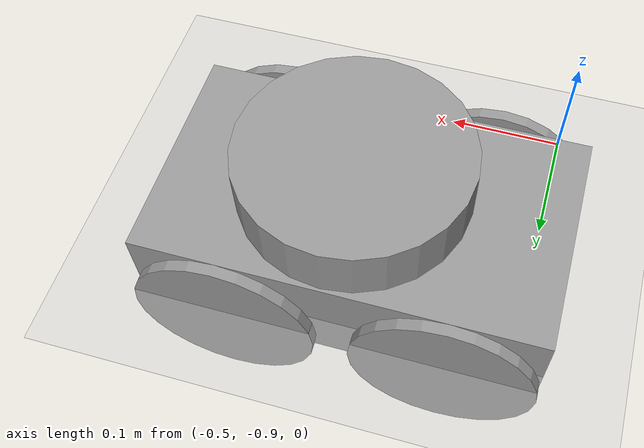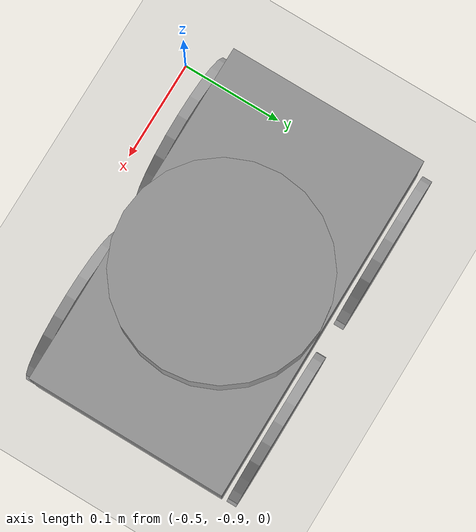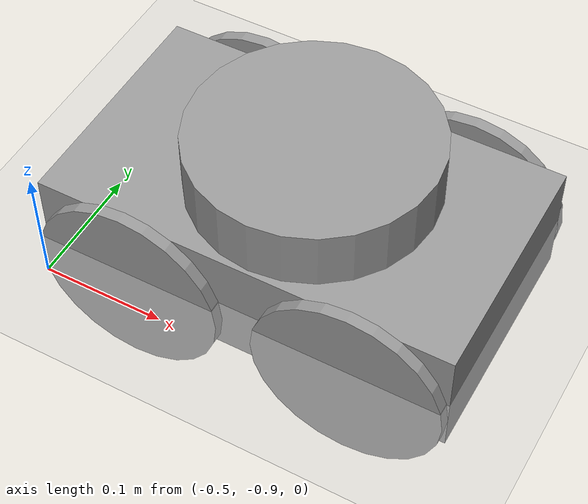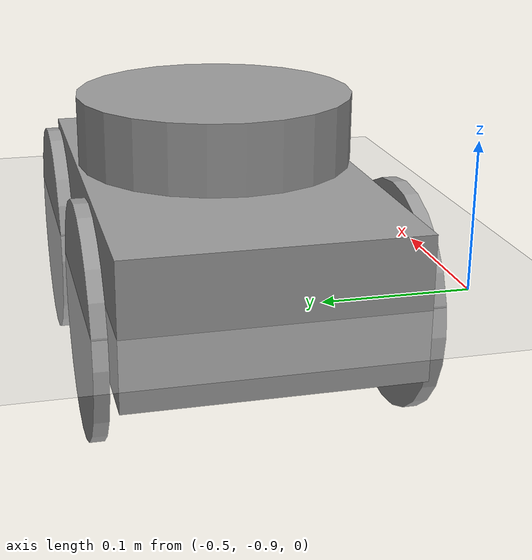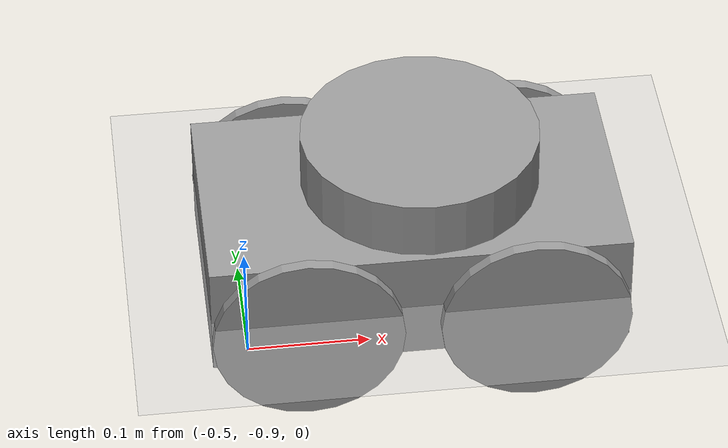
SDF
<sdf version="1.6">
 <world name="default">
  <model name="ground_plane">
   <static>1</static>
   <link name="link">
    <collision name="collision">
     <geometry><plane><normal>0 0 1</normal><size>100 100</size></plane></geometry>
     <surface><friction><ode><mu>100</mu><mu2>50</mu2></ode></friction></surface>
    </collision>
    <visual name="visual">
     <cast_shadows>0</cast_shadows>
     <geometry><plane><normal>0 0 1</normal><size>100 100</size></plane></geometry>
     <material>
      <script><uri>file://media/materials/scripts/gazebo.material</uri><name>Gazebo/Grey</name></script>
     </material>
    </visual>
   </link>
  </model>
  <model name="Recon01_0">
   <link name="link_0">
    <pose>-0.001667 -0.001667 0 0 -0 0</pose>
    <inertial>
     <mass>1</mass>
     <inertia>
      <ixx>0.166667</ixx>
      <ixy>0</ixy>
      <ixz>0</ixz>
      <iyy>0.166667</iyy>
      <iyz>0</iyz>
      <izz>0.166667</izz>
     </inertia>
    </inertial>
    <visual name="visual">
     <geometry><box><size>0.35 0.2 0.1</size></box></geometry>
     <material>
      <lighting>1</lighting>
      <script><uri>file://media/materials/scripts/gazebo.material</uri><name>Gazebo/Grey</name></script>
      <ambient>0.3 0.3 0.3 1</ambient>
      <diffuse>0.7 0.7 0.7 1</diffuse>
      <specular>0.01 0.01 0.01 1</specular>
      <emissive>0 0 0 1</emissive>
      <shader type="vertex"><normal_map>__default__</normal_map></shader>
     </material>
    </visual>
    <collision name="collision">
     <geometry><box><size>0.35 0.2 0.1</size></box></geometry>
     <surface>
      <friction>
       <ode><mu>1</mu><mu2>1</mu2><fdir1>0 0 0</fdir1><slip1>0</slip1><slip2>0</slip2></ode>
       <torsional>
        <coefficient>1</coefficient>
        <patch_radius>0</patch_radius>
        <surface_radius>0</surface_radius>
        <use_patch_radius>1</use_patch_radius>
        <ode><slip>0</slip></ode>
       </torsional>
      </friction>
      <bounce><restitution_coefficient>0</restitution_coefficient><threshold>1e+06</threshold></bounce>
      <contact>
       <collide_without_contact>0</collide_without_contact>
       <collide_without_contact_bitmask>1</collide_without_contact_bitmask>
       <collide_bitmask>1</collide_bitmask>
       <ode>
        <soft_cfm>0</soft_cfm>
        <soft_erp>0.2</soft_erp>
        <kp>1e+13</kp>
        <kd>1</kd>
        <max_vel>0.01</max_vel>
        <min_depth>0</min_depth>
       </ode>
       <bullet>
        <split_impulse>1</split_impulse>
        <split_impulse_penetration_threshold>-0.01</split_impulse_penetration_threshold>
        <soft_cfm>0</soft_cfm>
        <soft_erp>0.2</soft_erp>
        <kp>1e+13</kp>
        <kd>1</kd>
       </bullet>
      </contact>
     </surface>
    </collision>
   </link>
   <link name="link_1">
    <pose>-0.096667 0.108333 -0.02 1.5708 -0 0</pose>
    <inertial>
     <mass>1</mass>
     <inertia><ixx>0.145833</ixx><ixy>0</ixy><ixz>0</ixz><iyy>0.145833</iyy><iyz>0</iyz><izz>0.125</izz></inertia>
    </inertial>
    <visual name="visual">
     <geometry><cylinder><radius>0.08</radius><length>0.01</length></cylinder></geometry>
     <material>
      <lighting>1</lighting>
      <script><uri>file://media/materials/scripts/gazebo.material</uri><name>Gazebo/Grey</name></script>
      <ambient>0.3 0.3 0.3 1</ambient>
      <diffuse>0.7 0.7 0.7 1</diffuse>
      <specular>0.01 0.01 0.01 1</specular>
      <emissive>0 0 0 1</emissive>
      <shader type="vertex"><normal_map>__default__</normal_map></shader>
     </material>
    </visual>
    <collision name="collision">
     <geometry><cylinder><radius>0.08</radius><length>0.01</length></cylinder></geometry>
     <surface>
      <friction>
       <ode><mu>1</mu><mu2>1</mu2><fdir1>0 0 0</fdir1><slip1>0</slip1><slip2>0</slip2></ode>
       <torsional>
        <coefficient>1</coefficient>
        <patch_radius>0</patch_radius>
        <surface_radius>0</surface_radius>
        <use_patch_radius>1</use_patch_radius>
        <ode><slip>0</slip></ode>
       </torsional>
      </friction>
      <bounce><restitution_coefficient>0</restitution_coefficient><threshold>1e+06</threshold></bounce>
      <contact>
       <collide_without_contact>0</collide_without_contact>
       <collide_without_contact_bitmask>1</collide_without_contact_bitmask>
       <collide_bitmask>1</collide_bitmask>
       <ode>
        <soft_cfm>0</soft_cfm>
        <soft_erp>0.2</soft_erp>
        <kp>1e+13</kp>
        <kd>1</kd>
        <max_vel>0.01</max_vel>
        <min_depth>0</min_depth>
       </ode>
       <bullet>
        <split_impulse>1</split_impulse>
        <split_impulse_penetration_threshold>-0.01</split_impulse_penetration_threshold>
        <soft_cfm>0</soft_cfm>
        <soft_erp>0.2</soft_erp>
        <kp>1e+13</kp>
        <kd>1</kd>
       </bullet>
      </contact>
     </surface>
    </collision>
   </link>
   <link name="link_1_clone">
    <pose>0.093333 0.108333 -0.02 1.5708 -0 0</pose>
    <inertial>
     <mass>1</mass>
     <inertia><ixx>0.145833</ixx><ixy>0</ixy><ixz>0</ixz><iyy>0.145833</iyy><iyz>0</iyz><izz>0.125</izz></inertia>
    </inertial>
    <visual name="visual">
     <geometry><cylinder><radius>0.08</radius><length>0.01</length></cylinder></geometry>
     <material>
      <lighting>1</lighting>
      <script><uri>file://media/materials/scripts/gazebo.material</uri><name>Gazebo/Grey</name></script>
      <ambient>0.3 0.3 0.3 1</ambient>
      <diffuse>0.7 0.7 0.7 1</diffuse>
      <specular>0.01 0.01 0.01 1</specular>
      <emissive>0 0 0 1</emissive>
      <shader type="vertex"><normal_map>__default__</normal_map></shader>
     </material>
    </visual>
    <collision name="collision">
     <geometry><cylinder><radius>0.08</radius><length>0.01</length></cylinder></geometry>
     <surface>
      <friction>
       <ode><mu>1</mu><mu2>1</mu2><fdir1>0 0 0</fdir1><slip1>0</slip1><slip2>0</slip2></ode>
       <torsional>
        <coefficient>1</coefficient>
        <patch_radius>0</patch_radius>
        <surface_radius>0</surface_radius>
        <use_patch_radius>1</use_patch_radius>
        <ode><slip>0</slip></ode>
       </torsional>
      </friction>
      <bounce><restitution_coefficient>0</restitution_coefficient><threshold>1e+06</threshold></bounce>
      <contact>
       <collide_without_contact>0</collide_without_contact>
       <collide_without_contact_bitmask>1</collide_without_contact_bitmask>
       <collide_bitmask>1</collide_bitmask>
       <ode>
        <soft_cfm>0</soft_cfm>
        <soft_erp>0.2</soft_erp>
        <kp>1e+13</kp>
        <kd>1</kd>
        <max_vel>0.01</max_vel>
        <min_depth>0</min_depth>
       </ode>
       <bullet>
        <split_impulse>1</split_impulse>
        <split_impulse_penetration_threshold>-0.01</split_impulse_penetration_threshold>
        <soft_cfm>0</soft_cfm>
        <soft_erp>0.2</soft_erp>
        <kp>1e+13</kp>
        <kd>1</kd>
       </bullet>
      </contact>
     </surface>
    </collision>
   </link>
   <link name="link_1_clone_0">
    <pose>-0.096667 -0.106667 -0.02 1.5708 -0 0</pose>
    <inertial>
     <mass>1</mass>
     <inertia><ixx>0.145833</ixx><ixy>0</ixy><ixz>0</ixz><iyy>0.145833</iyy><iyz>0</iyz><izz>0.125</izz></inertia>
    </inertial>
    <visual name="visual">
     <geometry><cylinder><radius>0.08</radius><length>0.01</length></cylinder></geometry>
     <material>
      <lighting>1</lighting>
      <script><uri>file://media/materials/scripts/gazebo.material</uri><name>Gazebo/Grey</name></script>
      <ambient>0.3 0.3 0.3 1</ambient>
      <diffuse>0.7 0.7 0.7 1</diffuse>
      <specular>0.01 0.01 0.01 1</specular>
      <emissive>0 0 0 1</emissive>
      <shader type="vertex"><normal_map>__default__</normal_map></shader>
     </material>
    </visual>
    <collision name="collision">
     <geometry><cylinder><radius>0.08</radius><length>0.01</length></cylinder></geometry>
     <surface>
      <friction>
       <ode><mu>1</mu><mu2>1</mu2><fdir1>0 0 0</fdir1><slip1>0</slip1><slip2>0</slip2></ode>
       <torsional>
        <coefficient>1</coefficient>
        <patch_radius>0</patch_radius>
        <surface_radius>0</surface_radius>
        <use_patch_radius>1</use_patch_radius>
        <ode><slip>0</slip></ode>
       </torsional>
      </friction>
      <bounce><restitution_coefficient>0</restitution_coefficient><threshold>1e+06</threshold></bounce>
      <contact>
       <collide_without_contact>0</collide_without_contact>
       <collide_without_contact_bitmask>1</collide_without_contact_bitmask>
       <collide_bitmask>1</collide_bitmask>
       <ode>
        <soft_cfm>0</soft_cfm>
        <soft_erp>0.2</soft_erp>
        <kp>1e+13</kp>
        <kd>1</kd>
        <max_vel>0.01</max_vel>
        <min_depth>0</min_depth>
       </ode>
       <bullet>
        <split_impulse>1</split_impulse>
        <split_impulse_penetration_threshold>-0.01</split_impulse_penetration_threshold>
        <soft_cfm>0</soft_cfm>
        <soft_erp>0.2</soft_erp>
        <kp>1e+13</kp>
        <kd>1</kd>
       </bullet>
      </contact>
     </surface>
    </collision>
   </link>
   <link name="link_1_clone_1">
    <pose>0.093333 -0.106667 -0.02 1.5708 -0 0</pose>
    <inertial>
     <mass>1</mass>
     <inertia><ixx>0.145833</ixx><ixy>0</ixy><ixz>0</ixz><iyy>0.145833</iyy><iyz>0</iyz><izz>0.125</izz></inertia>
    </inertial>
    <visual name="visual">
     <geometry><cylinder><radius>0.08</radius><length>0.01</length></cylinder></geometry>
     <material>
      <lighting>1</lighting>
      <script><uri>file://media/materials/scripts/gazebo.material</uri><name>Gazebo/Grey</name></script>
      <ambient>0.3 0.3 0.3 1</ambient>
      <diffuse>0.7 0.7 0.7 1</diffuse>
      <specular>0.01 0.01 0.01 1</specular>
      <emissive>0 0 0 1</emissive>
      <shader type="vertex"><normal_map>__default__</normal_map></shader>
     </material>
    </visual>
    <collision name="collision">
     <geometry><cylinder><radius>0.08</radius><length>0.01</length></cylinder></geometry>
     <surface>
      <friction>
       <ode><mu>1</mu><mu2>1</mu2><fdir1>0 0 0</fdir1><slip1>0</slip1><slip2>0</slip2></ode>
       <torsional>
        <coefficient>1</coefficient>
        <patch_radius>0</patch_radius>
        <surface_radius>0</surface_radius>
        <use_patch_radius>1</use_patch_radius>
        <ode><slip>0</slip></ode>
       </torsional>
      </friction>
      <bounce><restitution_coefficient>0</restitution_coefficient><threshold>1e+06</threshold></bounce>
      <contact>
       <collide_without_contact>0</collide_without_contact>
       <collide_without_contact_bitmask>1</collide_without_contact_bitmask>
       <collide_bitmask>1</collide_bitmask>
       <ode>
        <soft_cfm>0</soft_cfm>
        <soft_erp>0.2</soft_erp>
        <kp>1e+13</kp>
        <kd>1</kd>
        <max_vel>0.01</max_vel>
        <min_depth>0</min_depth>
       </ode>
       <bullet>
        <split_impulse>1</split_impulse>
        <split_impulse_penetration_threshold>-0.01</split_impulse_penetration_threshold>
        <soft_cfm>0</soft_cfm>
        <soft_erp>0.2</soft_erp>
        <kp>1e+13</kp>
        <kd>1</kd>
       </bullet>
      </contact>
     </surface>
    </collision>
   </link>
   <link name="link_2">
    <pose>0.008333 -0.001667 0.08 0 -0 0</pose>
    <inertial>
     <mass>1</mass>
     <inertia><ixx>0.145833</ixx><ixy>0</ixy><ixz>0</ixz><iyy>0.145833</iyy><iyz>0</iyz><izz>0.125</izz></inertia>
    </inertial>
    <visual name="visual">
     <geometry><cylinder><radius>0.1</radius><length>0.05</length></cylinder></geometry>
     <material>
      <lighting>1</lighting>
      <script><uri>file://media/materials/scripts/gazebo.material</uri><name>Gazebo/Grey</name></script>
      <ambient>0.3 0.3 0.3 1</ambient>
      <diffuse>0.7 0.7 0.7 1</diffuse>
      <specular>0.01 0.01 0.01 1</specular>
      <emissive>0 0 0 1</emissive>
      <shader type="vertex"><normal_map>__default__</normal_map></shader>
     </material>
    </visual>
    <collision name="collision">
     <geometry><cylinder><radius>0.08</radius><length>0.05</length></cylinder></geometry>
     <surface>
      <friction>
       <ode><mu>1</mu><mu2>1</mu2><fdir1>0 0 0</fdir1><slip1>0</slip1><slip2>0</slip2></ode>
       <torsional>
        <coefficient>1</coefficient>
        <patch_radius>0</patch_radius>
        <surface_radius>0</surface_radius>
        <use_patch_radius>1</use_patch_radius>
        <ode><slip>0</slip></ode>
       </torsional>
      </friction>
      <bounce><restitution_coefficient>0</restitution_coefficient><threshold>1e+06</threshold></bounce>
      <contact>
       <collide_without_contact>0</collide_without_contact>
       <collide_without_contact_bitmask>1</collide_without_contact_bitmask>
       <collide_bitmask>1</collide_bitmask>
       <ode>
        <soft_cfm>0</soft_cfm>
        <soft_erp>0.2</soft_erp>
        <kp>1e+13</kp>
        <kd>1</kd>
        <max_vel>0.01</max_vel>
        <min_depth>0</min_depth>
       </ode>
       <bullet>
        <split_impulse>1</split_impulse>
        <split_impulse_penetration_threshold>-0.01</split_impulse_penetration_threshold>
        <soft_cfm>0</soft_cfm>
        <soft_erp>0.2</soft_erp>
        <kp>1e+13</kp>
        <kd>1</kd>
       </bullet>
      </contact>
     </surface>
    </collision>
   </link>
   <joint name="link_0_JOINT_10" type="revolute">
    <parent>link_0</parent>
    <child>link_2</child>
    <axis>
     <xyz>1 0 0</xyz>
     <use_parent_model_frame>0</use_parent_model_frame>
     <limit>
      <lower>-1.79769e+308</lower>
      <upper>1.79769e+308</upper>
      <effort>-1</effort>
      <velocity>-1</velocity>
     </limit>
     <dynamics>
      <spring_reference>0</spring_reference>
      <spring_stiffness>0</spring_stiffness>
      <damping>0</damping>
     </dynamics>
    </axis>
    <physics>
     <ode><limit><cfm>0</cfm><erp>0.2</erp></limit><suspension><cfm>0</cfm><erp>0.2</erp></suspension></ode>
    </physics>
   </joint>
   <joint name="link_0_JOINT_2" type="revolute">
    <parent>link_0</parent>
    <child>link_1_clone_1</child>
    <axis>
     <xyz>1 0 0</xyz>
     <use_parent_model_frame>0</use_parent_model_frame>
     <limit>
      <lower>-1.79769e+308</lower>
      <upper>1.79769e+308</upper>
      <effort>-1</effort>
      <velocity>-1</velocity>
     </limit>
     <dynamics>
      <spring_reference>0</spring_reference>
      <spring_stiffness>0</spring_stiffness>
      <damping>0</damping>
      <friction>0</friction>
     </dynamics>
    </axis>
    <physics>
     <ode><limit><cfm>0</cfm><erp>0.2</erp></limit><suspension><cfm>0</cfm><erp>0.2</erp></suspension></ode>
    </physics>
   </joint>
   <joint name="link_0_JOINT_3" type="revolute">
    <parent>link_0</parent>
    <child>link_1_clone_0</child>
    <axis>
     <xyz>1 0 0</xyz>
     <use_parent_model_frame>0</use_parent_model_frame>
     <limit>
      <lower>-1.79769e+308</lower>
      <upper>1.79769e+308</upper>
      <effort>-1</effort>
      <velocity>-1</velocity>
     </limit>
     <dynamics>
      <spring_reference>0</spring_reference>
      <spring_stiffness>0</spring_stiffness>
      <damping>0</damping>
     </dynamics>
    </axis>
    <physics>
     <ode><limit><cfm>0</cfm><erp>0.2</erp></limit><suspension><cfm>0</cfm><erp>0.2</erp></suspension></ode>
    </physics>
   </joint>
   <joint name="link_0_JOINT_8" type="revolute">
    <parent>link_0</parent>
    <child>link_1_clone</child>
    <axis>
     <xyz>1 0 0</xyz>
     <use_parent_model_frame>0</use_parent_model_frame>
     <limit>
      <lower>-1.79769e+308</lower>
      <upper>1.79769e+308</upper>
      <effort>-1</effort>
      <velocity>-1</velocity>
     </limit>
     <dynamics>
      <spring_reference>0</spring_reference>
      <spring_stiffness>0</spring_stiffness>
      <damping>0</damping>
     </dynamics>
    </axis>
    <physics>
     <ode><limit><cfm>0</cfm><erp>0.2</erp></limit><suspension><cfm>0</cfm><erp>0.2</erp></suspension></ode>
    </physics>
   </joint>
   <joint name="link_0_JOINT_9" type="revolute">
    <parent>link_0</parent>
    <child>link_1</child>
    <axis>
     <xyz>1 0 0</xyz>
     <use_parent_model_frame>0</use_parent_model_frame>
     <limit>
      <lower>-1.79769e+308</lower>
      <upper>1.79769e+308</upper>
      <effort>-1</effort>
      <velocity>-1</velocity>
     </limit>
     <dynamics>
      <spring_reference>0</spring_reference>
      <spring_stiffness>0</spring_stiffness>
      <damping>0</damping>
     </dynamics>
    </axis>
    <physics>
     <ode><limit><cfm>0</cfm><erp>0.2</erp></limit><suspension><cfm>0</cfm><erp>0.2</erp></suspension></ode>
    </physics>
   </joint>
   <static>0</static>
   <pose>-0.350345 -0.762941 0 0 -0 0</pose>
  </model>
 </world>
</sdf>
